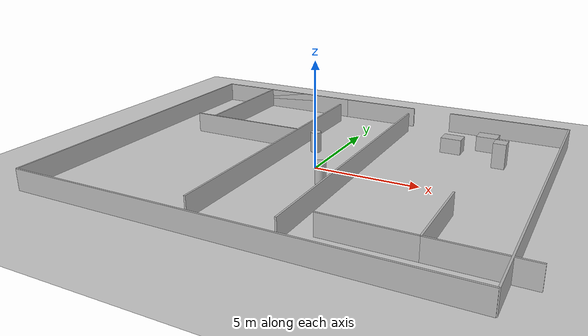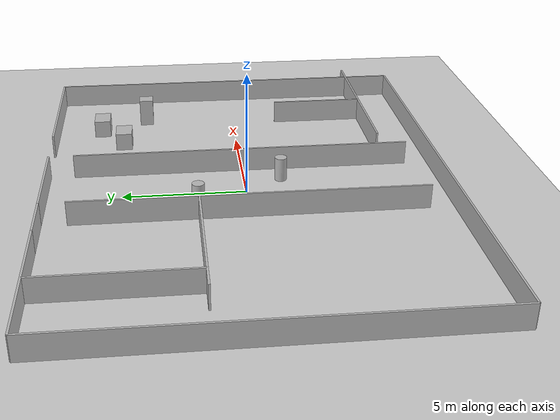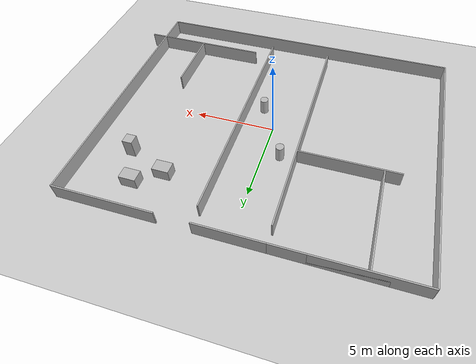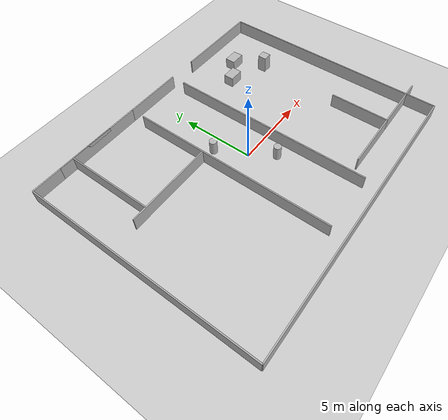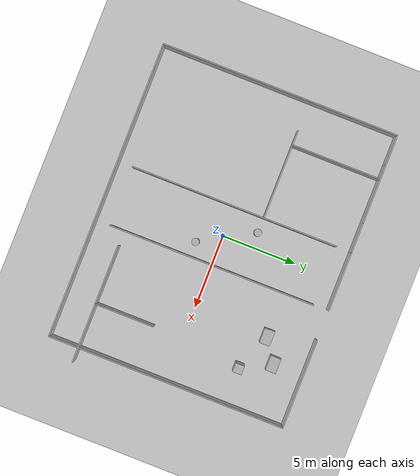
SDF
<?xml version="1.0" ?>
<sdf version="1.6">
  <world name="office_world">
    <gravity>0 0 -9.8</gravity>
    <physics type="ode">
      <max_step_size>0.001</max_step_size>
      <real_time_update_rate>1000</real_time_update_rate>
    </physics>

    <include>
      <uri>model://ground_plane</uri>
    </include>

    <!-- Perimeter walls (width=20, height=16) so layout is clearly different -->
    <model name="perimeter_walls">
      <static>true</static>
      <link name="walls">
        <collision name="east_c"><geometry><box><size>0.08 16 1</size></box></geometry><pose>10 0 0.5 0 0 0</pose></collision>
        <visual name="east_v"><geometry><box><size>0.08 16 1</size></box></geometry><pose>10 0 0.5 0 0 0</pose></visual>
        <collision name="west_c"><geometry><box><size>0.08 16 1</size></box></geometry><pose>-10 0 0.5 0 0 0</pose></collision>
        <visual name="west_v"><geometry><box><size>0.08 16 1</size></box></geometry><pose>-10 0 0.5 0 0 0</pose></visual>
        <!-- North wall split to create 3 door gaps -->
        <collision name="north_left_c"><geometry><box><size>6 0.08 1</size></box></geometry><pose>-7 8 0.5 0 0 0</pose></collision>
        <visual name="north_left_v"><geometry><box><size>6 0.08 1</size></box></geometry><pose>-7 8 0.5 0 0 0</pose></visual>
        <collision name="north_mid_c"><geometry><box><size>4 0.08 1</size></box></geometry><pose>0 8 0.5 0 0 0</pose></collision>
        <visual name="north_mid_v"><geometry><box><size>4 0.08 1</size></box></geometry><pose>0 8 0.5 0 0 0</pose></visual>
        <collision name="north_right_c"><geometry><box><size>6 0.08 1</size></box></geometry><pose>7 8 0.5 0 0 0</pose></collision>
        <visual name="north_right_v"><geometry><box><size>6 0.08 1</size></box></geometry><pose>7 8 0.5 0 0 0</pose></visual>
        <collision name="south_c"><geometry><box><size>20 0.08 1</size></box></geometry><pose>0 -8 0.5 0 0 0</pose></collision>
        <visual name="south_v"><geometry><box><size>20 0.08 1</size></box></geometry><pose>0 -8 0.5 0 0 0</pose></visual>
      </link>
    </model>

    <!-- Interior office layout: central corridor, meeting rooms, open workspace, storage -->
    <model name="interior_office">
      <static>true</static>
      <link name="walls_and_objects">
        <!-- Central corridor walls (two parallel long walls) -->
        <collision name="corridor_w1_c"><geometry><box><size>0.08 14 1</size></box></geometry><pose>-2 0 0.5 0 0 0</pose></collision>
        <visual name="corridor_w1_v"><geometry><box><size>0.08 14 1</size></box></geometry><pose>-2 0 0.5 0 0 0</pose></visual>
        <collision name="corridor_w2_c"><geometry><box><size>0.08 14 1</size></box></geometry><pose>2 0 0.5 0 0 0</pose></collision>
        <visual name="corridor_w2_v"><geometry><box><size>0.08 14 1</size></box></geometry><pose>2 0 0.5 0 0 0</pose></visual>

        <!-- Meeting room (top-left) walls with doorway gap -->
        <collision name="mr_tl_w1_c"><geometry><box><size>0.08 6 1</size></box></geometry><pose>-7 5 0.5 0 0 0</pose></collision>
        <visual name="mr_tl_w1_v"><geometry><box><size>0.08 6 1</size></box></geometry><pose>-7 5 0.5 0 0 0</pose></visual>
        <collision name="mr_tl_w2_c"><geometry><box><size>6 0.08 1</size></box></geometry><pose>-5 2 0.5 0 0 0</pose></collision>
        <visual name="mr_tl_w2_v"><geometry><box><size>6 0.08 1</size></box></geometry><pose>-5 2 0.5 0 0 0</pose></visual>
        <collision name="mr_tl_w3_c"><geometry><box><size>6 0.08 1</size></box></geometry><pose>-5 8 0.5 0 0 0</pose></collision>
        <visual name="mr_tl_w3_v"><geometry><box><size>6 0.08 1</size></box></geometry><pose>-5 8 0.5 0 0 0</pose></visual>

        <!-- Open office (top-right) with scattered obstacles -->
        <collision name="deskA_c"><geometry><box><size>1.0 0.7 0.75</size></box></geometry><pose>6.5 6.0 0.375 0 0 0</pose></collision>
        <visual name="deskA_v"><geometry><box><size>1.0 0.7 0.75</size></box></geometry><pose>6.5 6.0 0.375 0 0 0</pose></visual>
        <collision name="deskB_c"><geometry><box><size>1.0 0.7 0.75</size></box></geometry><pose>5.0 5.0 0.375 0 0 0</pose></collision>
        <visual name="deskB_v"><geometry><box><size>1.0 0.7 0.75</size></box></geometry><pose>5.0 5.0 0.375 0 0 0</pose></visual>
        <collision name="cabinet1_c"><geometry><box><size>0.6 0.6 1.2</size></box></geometry><pose>7.5 4.0 0.6 0 0 0</pose></collision>
        <visual name="cabinet1_v"><geometry><box><size>0.6 0.6 1.2</size></box></geometry><pose>7.5 4.0 0.6 0 0 0</pose></visual>

        <!-- Storage area (bottom-right) boxed with a doorway gap -->
        <collision name="storage_w1_c"><geometry><box><size>0.08 4 1</size></box></geometry><pose>7 -4 0.5 0 0 0</pose></collision>
        <visual name="storage_w1_v"><geometry><box><size>0.08 4 1</size></box></geometry><pose>7 -4 0.5 0 0 0</pose></visual>
        <collision name="storage_w2_c"><geometry><box><size>4 0.08 1</size></box></geometry><pose>5 -6 0.5 0 0 0</pose></collision>
        <visual name="storage_w2_v"><geometry><box><size>4 0.08 1</size></box></geometry><pose>5 -6 0.5 0 0 0</pose></visual>
        <collision name="storage_w3_c"><geometry><box><size>4 0.08 1</size></box></geometry><pose>9 -6 0.5 0 0 0</pose></collision>
        <visual name="storage_w3_v"><geometry><box><size>4 0.08 1</size></box></geometry><pose>9 -6 0.5 0 0 0</pose></visual>

        <!-- Corridor decor: pillars/plants -->
        <collision name="pillar1_c"><geometry><cylinder><radius>0.25</radius><length>1.0</length></cylinder></geometry><pose>-1.0 2.0 0.5 0 0 0</pose></collision>
        <visual name="pillar1_v"><geometry><cylinder><radius>0.25</radius><length>1.0</length></cylinder></geometry><pose>-1.0 2.0 0.5 0 0 0</pose></visual>
        <collision name="pillar2_c"><geometry><cylinder><radius>0.25</radius><length>1.0</length></cylinder></geometry><pose>1.0 -1.5 0.5 0 0 0</pose></collision>
        <visual name="pillar2_v"><geometry><cylinder><radius>0.25</radius><length>1.0</length></cylinder></geometry><pose>1.0 -1.5 0.5 0 0 0</pose></visual>
      </link>
    </model>

    <light type="directional" name="sun">
      <cast_shadows>true</cast_shadows>
      <pose>0 0 10 0 0 0</pose>
      <diffuse>1 1 1 1</diffuse>
      <specular>0.1 0.1 0.1 1</specular>
      <direction>-0.5 0.2 -1</direction>
    </light>
  </world>
</sdf>
